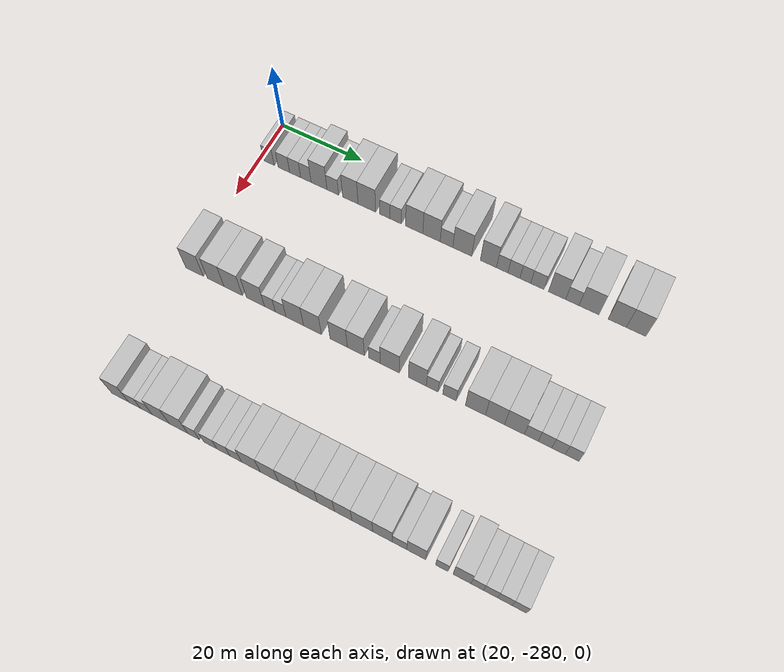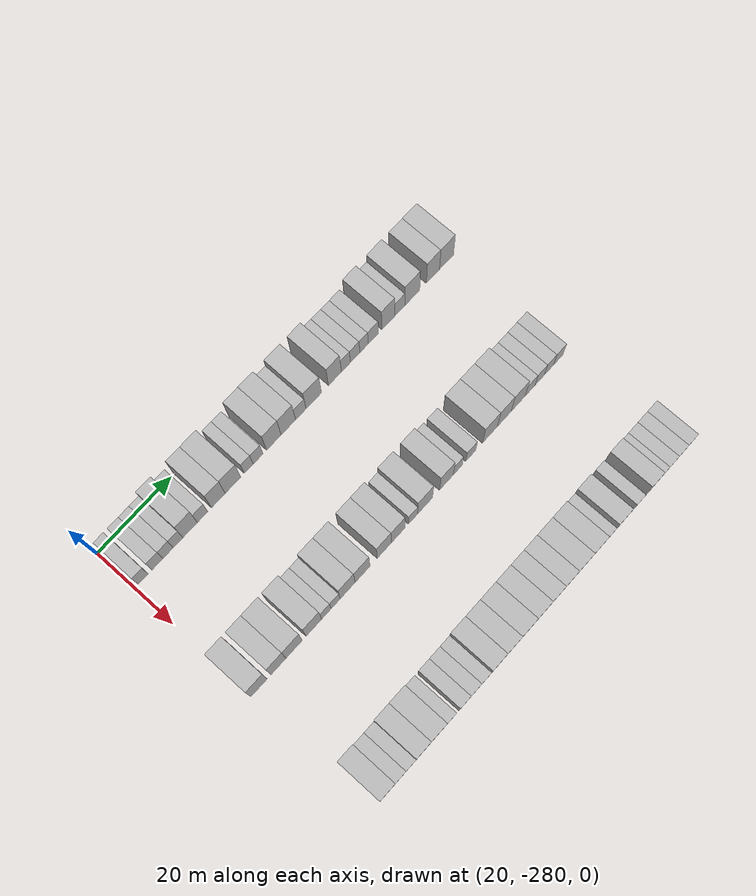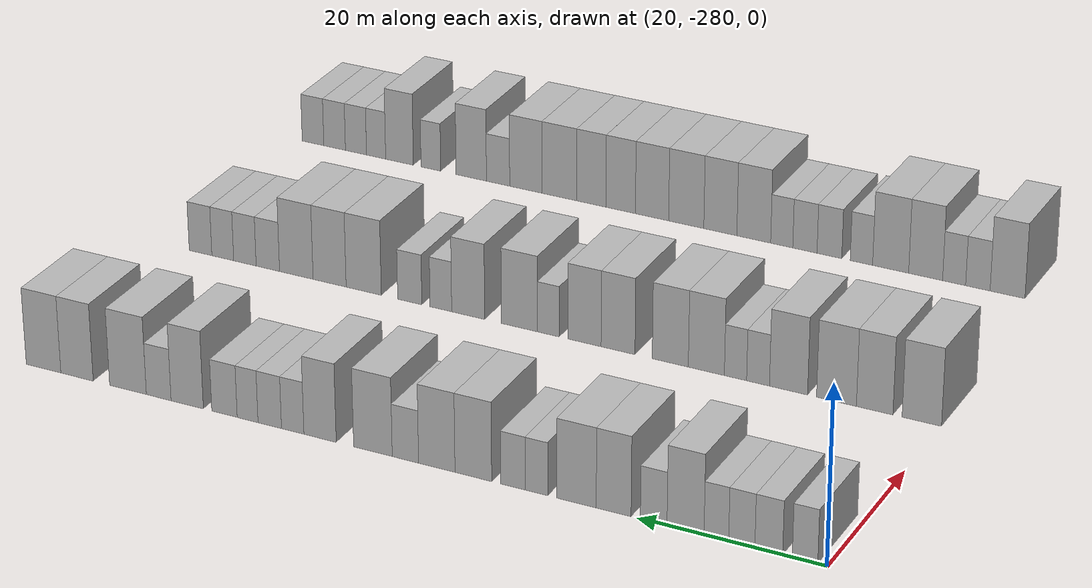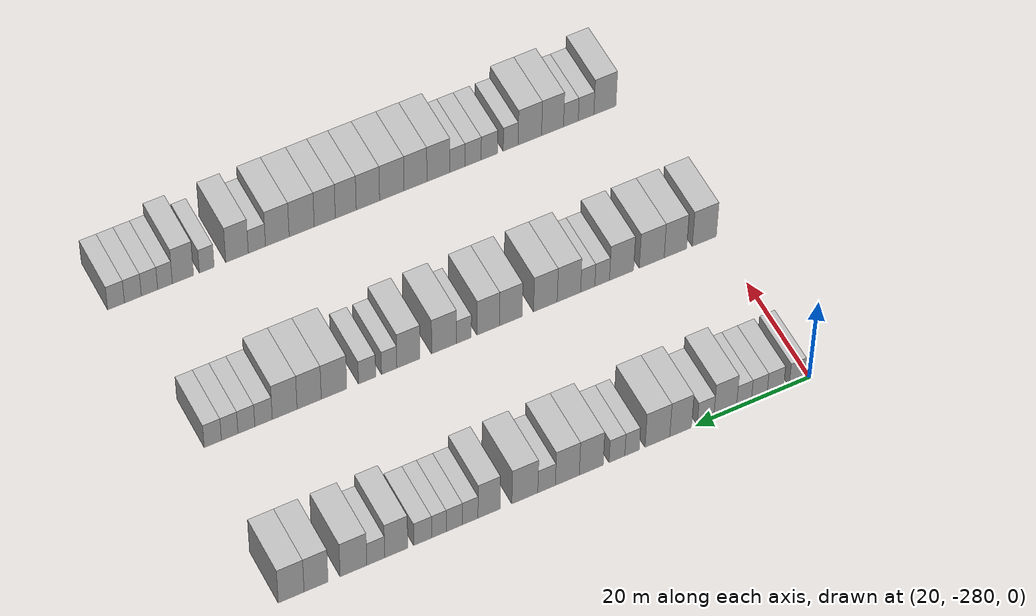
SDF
<sdf version="1.6">
 <world name="default">
  <model name="building_1">
   <static>1</static>
   <pose>25.0000 -277.6781 0 0.000000 0.000000 0.000000</pose>
   <link name="link">
    <pose>0 0 3.00 0 0 0</pose>
    <collision name="collision"><geometry><box><size>10.0000 2.6438 6.0000</size></box></geometry></collision>
    <visual name="visual">
     <cast_shadows>0</cast_shadows>
     <geometry><box><size>10.0000 2.6438 6.0000</size></box></geometry>
     <material>
      <script>
       <uri>model://HANNAS_wall/materials/scripts</uri>
       <uri>model://HANNAS_wall/materials/textures</uri>
       <name>vrc/HANNAS_wall</name>
      </script>
     </material>
    </visual>
   </link>
  </model>
  <model name="building_2">
   <static>1</static>
   <pose>25.0000 -273.9054 0 0.000000 0.000000 0.000000</pose>
   <link name="link">
    <pose>0 0 3.00 0 0 0</pose>
    <collision name="collision"><geometry><box><size>10.0000 2.9015 6.0000</size></box></geometry></collision>
    <visual name="visual">
     <cast_shadows>0</cast_shadows>
     <geometry><box><size>10.0000 2.9015 6.0000</size></box></geometry>
     <material>
      <script>
       <uri>model://HANNAS_wall/materials/scripts</uri>
       <uri>model://HANNAS_wall/materials/textures</uri>
       <name>vrc/HANNAS_wall</name>
      </script>
     </material>
    </visual>
   </link>
  </model>
  <model name="building_3">
   <static>1</static>
   <pose>25.0000 -271.0770 0 0.000000 0.000000 0.000000</pose>
   <link name="link">
    <pose>0 0 3.00 0 0 0</pose>
    <collision name="collision"><geometry><box><size>10.0000 2.7553 6.0000</size></box></geometry></collision>
    <visual name="visual">
     <cast_shadows>0</cast_shadows>
     <geometry><box><size>10.0000 2.7553 6.0000</size></box></geometry>
     <material>
      <script>
       <uri>model://HANNAS_wall/materials/scripts</uri>
       <uri>model://HANNAS_wall/materials/textures</uri>
       <name>vrc/HANNAS_wall</name>
      </script>
     </material>
    </visual>
   </link>
  </model>
  <model name="building_4">
   <static>1</static>
   <pose>25.0000 -268.3990 0 0.000000 0.000000 0.000000</pose>
   <link name="link">
    <pose>0 0 3.00 0 0 0</pose>
    <collision name="collision"><geometry><box><size>10.0000 2.6006 6.0000</size></box></geometry></collision>
    <visual name="visual">
     <cast_shadows>0</cast_shadows>
     <geometry><box><size>10.0000 2.6006 6.0000</size></box></geometry>
     <material>
      <script>
       <uri>model://HANNAS_wall/materials/scripts</uri>
       <uri>model://HANNAS_wall/materials/textures</uri>
       <name>vrc/HANNAS_wall</name>
      </script>
     </material>
    </visual>
   </link>
  </model>
  <model name="building_5">
   <static>1</static>
   <pose>25.0000 -265.1300 0 0.000000 0.000000 0.000000</pose>
   <link name="link">
    <pose>0 0 4.50 0 0 0</pose>
    <collision name="collision"><geometry><box><size>10.0000 3.9375 9.0000</size></box></geometry></collision>
    <visual name="visual">
     <cast_shadows>0</cast_shadows>
     <geometry><box><size>10.0000 3.9375 9.0000</size></box></geometry>
     <material>
      <script>
       <uri>model://HANNAS_wall/materials/scripts</uri>
       <uri>model://HANNAS_wall/materials/textures</uri>
       <name>vrc/HANNAS_wall</name>
      </script>
     </material>
    </visual>
   </link>
  </model>
  <model name="building_6">
   <static>1</static>
   <pose>25.0000 -261.7340 0 0.000000 0.000000 0.000000</pose>
   <link name="link">
    <pose>0 0 3.00 0 0 0</pose>
    <collision name="collision"><geometry><box><size>10.0000 2.8546 6.0000</size></box></geometry></collision>
    <visual name="visual">
     <cast_shadows>0</cast_shadows>
     <geometry><box><size>10.0000 2.8546 6.0000</size></box></geometry>
     <material>
      <script>
       <uri>model://HANNAS_wall/materials/scripts</uri>
       <uri>model://HANNAS_wall/materials/textures</uri>
       <name>vrc/HANNAS_wall</name>
      </script>
     </material>
    </visual>
   </link>
  </model>
  <model name="building_7">
   <static>1</static>
   <pose>25.0000 -257.4243 0 0.000000 0.000000 0.000000</pose>
   <link name="link">
    <pose>0 0 4.50 0 0 0</pose>
    <collision name="collision"><geometry><box><size>10.0000 3.7646 9.0000</size></box></geometry></collision>
    <visual name="visual">
     <cast_shadows>0</cast_shadows>
     <geometry><box><size>10.0000 3.7646 9.0000</size></box></geometry>
     <material>
      <script>
       <uri>model://HANNAS_wall/materials/scripts</uri>
       <uri>model://HANNAS_wall/materials/textures</uri>
       <name>vrc/HANNAS_wall</name>
      </script>
     </material>
    </visual>
   </link>
  </model>
  <model name="building_8">
   <static>1</static>
   <pose>25.0000 -253.4017 0 0.000000 0.000000 0.000000</pose>
   <link name="link">
    <pose>0 0 4.50 0 0 0</pose>
    <collision name="collision"><geometry><box><size>10.0000 4.2806 9.0000</size></box></geometry></collision>
    <visual name="visual">
     <cast_shadows>0</cast_shadows>
     <geometry><box><size>10.0000 4.2806 9.0000</size></box></geometry>
     <material>
      <script>
       <uri>model://HANNAS_wall/materials/scripts</uri>
       <uri>model://HANNAS_wall/materials/textures</uri>
       <name>vrc/HANNAS_wall</name>
      </script>
     </material>
    </visual>
   </link>
  </model>
  <model name="building_9">
   <static>1</static>
   <pose>25.0000 -249.0257 0 0.000000 0.000000 0.000000</pose>
   <link name="link">
    <pose>0 0 3.00 0 0 0</pose>
    <collision name="collision"><geometry><box><size>10.0000 2.4715 6.0000</size></box></geometry></collision>
    <visual name="visual">
     <cast_shadows>0</cast_shadows>
     <geometry><box><size>10.0000 2.4715 6.0000</size></box></geometry>
     <material>
      <script>
       <uri>model://HANNAS_wall/materials/scripts</uri>
       <uri>model://HANNAS_wall/materials/textures</uri>
       <name>vrc/HANNAS_wall</name>
      </script>
     </material>
    </visual>
   </link>
  </model>
  <model name="building_10">
   <static>1</static>
   <pose>25.0000 -246.4286 0 0.000000 0.000000 0.000000</pose>
   <link name="link">
    <pose>0 0 3.00 0 0 0</pose>
    <collision name="collision"><geometry><box><size>10.0000 2.7227 6.0000</size></box></geometry></collision>
    <visual name="visual">
     <cast_shadows>0</cast_shadows>
     <geometry><box><size>10.0000 2.7227 6.0000</size></box></geometry>
     <material>
      <script>
       <uri>model://HANNAS_wall/materials/scripts</uri>
       <uri>model://HANNAS_wall/materials/textures</uri>
       <name>vrc/HANNAS_wall</name>
      </script>
     </material>
    </visual>
   </link>
  </model>
  <model name="building_11">
   <static>1</static>
   <pose>25.0000 -242.0213 0 0.000000 0.000000 0.000000</pose>
   <link name="link">
    <pose>0 0 4.50 0 0 0</pose>
    <collision name="collision"><geometry><box><size>10.0000 4.0918 9.0000</size></box></geometry></collision>
    <visual name="visual">
     <cast_shadows>0</cast_shadows>
     <geometry><box><size>10.0000 4.0918 9.0000</size></box></geometry>
     <material>
      <script>
       <uri>model://HANNAS_wall/materials/scripts</uri>
       <uri>model://HANNAS_wall/materials/textures</uri>
       <name>vrc/HANNAS_wall</name>
      </script>
     </material>
    </visual>
   </link>
  </model>
  <model name="building_12">
   <static>1</static>
   <pose>25.0000 -237.9267 0 0.000000 0.000000 0.000000</pose>
   <link name="link">
    <pose>0 0 4.50 0 0 0</pose>
    <collision name="collision"><geometry><box><size>10.0000 4.0975 9.0000</size></box></geometry></collision>
    <visual name="visual">
     <cast_shadows>0</cast_shadows>
     <geometry><box><size>10.0000 4.0975 9.0000</size></box></geometry>
     <material>
      <script>
       <uri>model://HANNAS_wall/materials/scripts</uri>
       <uri>model://HANNAS_wall/materials/textures</uri>
       <name>vrc/HANNAS_wall</name>
      </script>
     </material>
    </visual>
   </link>
  </model>
  <model name="building_13">
   <static>1</static>
   <pose>25.0000 -234.3862 0 0.000000 0.000000 0.000000</pose>
   <link name="link">
    <pose>0 0 3.00 0 0 0</pose>
    <collision name="collision"><geometry><box><size>10.0000 2.9835 6.0000</size></box></geometry></collision>
    <visual name="visual">
     <cast_shadows>0</cast_shadows>
     <geometry><box><size>10.0000 2.9835 6.0000</size></box></geometry>
     <material>
      <script>
       <uri>model://HANNAS_wall/materials/scripts</uri>
       <uri>model://HANNAS_wall/materials/textures</uri>
       <name>vrc/HANNAS_wall</name>
      </script>
     </material>
    </visual>
   </link>
  </model>
  <model name="building_14">
   <static>1</static>
   <pose>25.0000 -230.6913 0 0.000000 0.000000 0.000000</pose>
   <link name="link">
    <pose>0 0 4.50 0 0 0</pose>
    <collision name="collision"><geometry><box><size>10.0000 4.4063 9.0000</size></box></geometry></collision>
    <visual name="visual">
     <cast_shadows>0</cast_shadows>
     <geometry><box><size>10.0000 4.4063 9.0000</size></box></geometry>
     <material>
      <script>
       <uri>model://HANNAS_wall/materials/scripts</uri>
       <uri>model://HANNAS_wall/materials/textures</uri>
       <name>vrc/HANNAS_wall</name>
      </script>
     </material>
    </visual>
   </link>
  </model>
  <model name="building_15">
   <static>1</static>
   <pose>25.0000 -224.6204 0 0.000000 0.000000 0.000000</pose>
   <link name="link">
    <pose>0 0 4.50 0 0 0</pose>
    <collision name="collision"><geometry><box><size>10.0000 3.7354 9.0000</size></box></geometry></collision>
    <visual name="visual">
     <cast_shadows>0</cast_shadows>
     <geometry><box><size>10.0000 3.7354 9.0000</size></box></geometry>
     <material>
      <script>
       <uri>model://HANNAS_wall/materials/scripts</uri>
       <uri>model://HANNAS_wall/materials/textures</uri>
       <name>vrc/HANNAS_wall</name>
      </script>
     </material>
    </visual>
   </link>
  </model>
  <model name="building_16">
   <static>1</static>
   <pose>25.0000 -221.4481 0 0.000000 0.000000 0.000000</pose>
   <link name="link">
    <pose>0 0 3.00 0 0 0</pose>
    <collision name="collision"><geometry><box><size>10.0000 2.6093 6.0000</size></box></geometry></collision>
    <visual name="visual">
     <cast_shadows>0</cast_shadows>
     <geometry><box><size>10.0000 2.6093 6.0000</size></box></geometry>
     <material>
      <script>
       <uri>model://HANNAS_wall/materials/scripts</uri>
       <uri>model://HANNAS_wall/materials/textures</uri>
       <name>vrc/HANNAS_wall</name>
      </script>
     </material>
    </visual>
   </link>
  </model>
  <model name="building_17">
   <static>1</static>
   <pose>25.0000 -218.7706 0 0.000000 0.000000 0.000000</pose>
   <link name="link">
    <pose>0 0 3.00 0 0 0</pose>
    <collision name="collision"><geometry><box><size>10.0000 2.7456 6.0000</size></box></geometry></collision>
    <visual name="visual">
     <cast_shadows>0</cast_shadows>
     <geometry><box><size>10.0000 2.7456 6.0000</size></box></geometry>
     <material>
      <script>
       <uri>model://HANNAS_wall/materials/scripts</uri>
       <uri>model://HANNAS_wall/materials/textures</uri>
       <name>vrc/HANNAS_wall</name>
      </script>
     </material>
    </visual>
   </link>
  </model>
  <model name="building_18">
   <static>1</static>
   <pose>25.0000 -216.1740 0 0.000000 0.000000 0.000000</pose>
   <link name="link">
    <pose>0 0 3.00 0 0 0</pose>
    <collision name="collision"><geometry><box><size>10.0000 2.4477 6.0000</size></box></geometry></collision>
    <visual name="visual">
     <cast_shadows>0</cast_shadows>
     <geometry><box><size>10.0000 2.4477 6.0000</size></box></geometry>
     <material>
      <script>
       <uri>model://HANNAS_wall/materials/scripts</uri>
       <uri>model://HANNAS_wall/materials/textures</uri>
       <name>vrc/HANNAS_wall</name>
      </script>
     </material>
    </visual>
   </link>
  </model>
  <model name="building_19">
   <static>1</static>
   <pose>25.0000 -213.4519 0 0.000000 0.000000 0.000000</pose>
   <link name="link">
    <pose>0 0 3.00 0 0 0</pose>
    <collision name="collision"><geometry><box><size>10.0000 2.9965 6.0000</size></box></geometry></collision>
    <visual name="visual">
     <cast_shadows>0</cast_shadows>
     <geometry><box><size>10.0000 2.9965 6.0000</size></box></geometry>
     <material>
      <script>
       <uri>model://HANNAS_wall/materials/scripts</uri>
       <uri>model://HANNAS_wall/materials/textures</uri>
       <name>vrc/HANNAS_wall</name>
      </script>
     </material>
    </visual>
   </link>
  </model>
  <model name="building_20">
   <static>1</static>
   <pose>25.0000 -209.0284 0 0.000000 0.000000 0.000000</pose>
   <link name="link">
    <pose>0 0 4.50 0 0 0</pose>
    <collision name="collision"><geometry><box><size>10.0000 3.8504 9.0000</size></box></geometry></collision>
    <visual name="visual">
     <cast_shadows>0</cast_shadows>
     <geometry><box><size>10.0000 3.8504 9.0000</size></box></geometry>
     <material>
      <script>
       <uri>model://HANNAS_wall/materials/scripts</uri>
       <uri>model://HANNAS_wall/materials/textures</uri>
       <name>vrc/HANNAS_wall</name>
      </script>
     </material>
    </visual>
   </link>
  </model>
  <model name="building_21">
   <static>1</static>
   <pose>25.0000 -205.6199 0 0.000000 0.000000 0.000000</pose>
   <link name="link">
    <pose>0 0 3.00 0 0 0</pose>
    <collision name="collision"><geometry><box><size>10.0000 2.9667 6.0000</size></box></geometry></collision>
    <visual name="visual">
     <cast_shadows>0</cast_shadows>
     <geometry><box><size>10.0000 2.9667 6.0000</size></box></geometry>
     <material>
      <script>
       <uri>model://HANNAS_wall/materials/scripts</uri>
       <uri>model://HANNAS_wall/materials/textures</uri>
       <name>vrc/HANNAS_wall</name>
      </script>
     </material>
    </visual>
   </link>
  </model>
  <model name="building_22">
   <static>1</static>
   <pose>25.0000 -201.9201 0 0.000000 0.000000 0.000000</pose>
   <link name="link">
    <pose>0 0 4.50 0 0 0</pose>
    <collision name="collision"><geometry><box><size>10.0000 4.4330 9.0000</size></box></geometry></collision>
    <visual name="visual">
     <cast_shadows>0</cast_shadows>
     <geometry><box><size>10.0000 4.4330 9.0000</size></box></geometry>
     <material>
      <script>
       <uri>model://HANNAS_wall/materials/scripts</uri>
       <uri>model://HANNAS_wall/materials/textures</uri>
       <name>vrc/HANNAS_wall</name>
      </script>
     </material>
    </visual>
   </link>
  </model>
  <model name="building_23">
   <static>1</static>
   <pose>25.0000 -195.7237 0 0.000000 0.000000 0.000000</pose>
   <link name="link">
    <pose>0 0 4.50 0 0 0</pose>
    <collision name="collision"><geometry><box><size>10.0000 3.9597 9.0000</size></box></geometry></collision>
    <visual name="visual">
     <cast_shadows>0</cast_shadows>
     <geometry><box><size>10.0000 3.9597 9.0000</size></box></geometry>
     <material>
      <script>
       <uri>model://HANNAS_wall/materials/scripts</uri>
       <uri>model://HANNAS_wall/materials/textures</uri>
       <name>vrc/HANNAS_wall</name>
      </script>
     </material>
    </visual>
   </link>
  </model>
  <model name="building_24">
   <static>1</static>
   <pose>25.0000 -191.6149 0 0.000000 0.000000 0.000000</pose>
   <link name="link">
    <pose>0 0 4.50 0 0 0</pose>
    <collision name="collision"><geometry><box><size>10.0000 4.2580 9.0000</size></box></geometry></collision>
    <visual name="visual">
     <cast_shadows>0</cast_shadows>
     <geometry><box><size>10.0000 4.2580 9.0000</size></box></geometry>
     <material>
      <script>
       <uri>model://HANNAS_wall/materials/scripts</uri>
       <uri>model://HANNAS_wall/materials/textures</uri>
       <name>vrc/HANNAS_wall</name>
      </script>
     </material>
    </visual>
   </link>
  </model>
  <model name="building_145">
   <static>1</static>
   <pose>55.0000 -277.8526 0 0.000000 0.000000 0.000000</pose>
   <link name="link">
    <pose>0 0 4.50 0 0 0</pose>
    <collision name="collision"><geometry><box><size>10.0000 4.2949 9.0000</size></box></geometry></collision>
    <visual name="visual">
     <cast_shadows>0</cast_shadows>
     <geometry><box><size>10.0000 4.2949 9.0000</size></box></geometry>
     <material>
      <script>
       <uri>model://HANNAS_wall/materials/scripts</uri>
       <uri>model://HANNAS_wall/materials/textures</uri>
       <name>vrc/HANNAS_wall</name>
      </script>
     </material>
    </visual>
   </link>
  </model>
  <model name="building_146">
   <static>1</static>
   <pose>55.0000 -272.6951 0 0.000000 0.000000 0.000000</pose>
   <link name="link">
    <pose>0 0 4.50 0 0 0</pose>
    <collision name="collision"><geometry><box><size>10.0000 4.0200 9.0000</size></box></geometry></collision>
    <visual name="visual">
     <cast_shadows>0</cast_shadows>
     <geometry><box><size>10.0000 4.0200 9.0000</size></box></geometry>
     <material>
      <script>
       <uri>model://HANNAS_wall/materials/scripts</uri>
       <uri>model://HANNAS_wall/materials/textures</uri>
       <name>vrc/HANNAS_wall</name>
      </script>
     </material>
    </visual>
   </link>
  </model>
  <model name="building_147">
   <static>1</static>
   <pose>55.0000 -268.4760 0 0.000000 0.000000 0.000000</pose>
   <link name="link">
    <pose>0 0 4.50 0 0 0</pose>
    <collision name="collision"><geometry><box><size>10.0000 4.4182 9.0000</size></box></geometry></collision>
    <visual name="visual">
     <cast_shadows>0</cast_shadows>
     <geometry><box><size>10.0000 4.4182 9.0000</size></box></geometry>
     <material>
      <script>
       <uri>model://HANNAS_wall/materials/scripts</uri>
       <uri>model://HANNAS_wall/materials/textures</uri>
       <name>vrc/HANNAS_wall</name>
      </script>
     </material>
    </visual>
   </link>
  </model>
  <model name="building_148">
   <static>1</static>
   <pose>55.0000 -263.1306 0 0.000000 0.000000 0.000000</pose>
   <link name="link">
    <pose>0 0 4.50 0 0 0</pose>
    <collision name="collision"><geometry><box><size>10.0000 4.2727 9.0000</size></box></geometry></collision>
    <visual name="visual">
     <cast_shadows>0</cast_shadows>
     <geometry><box><size>10.0000 4.2727 9.0000</size></box></geometry>
     <material>
      <script>
       <uri>model://HANNAS_wall/materials/scripts</uri>
       <uri>model://HANNAS_wall/materials/textures</uri>
       <name>vrc/HANNAS_wall</name>
      </script>
     </material>
    </visual>
   </link>
  </model>
  <model name="building_149">
   <static>1</static>
   <pose>55.0000 -259.7042 0 0.000000 0.000000 0.000000</pose>
   <link name="link">
    <pose>0 0 3.00 0 0 0</pose>
    <collision name="collision"><geometry><box><size>10.0000 2.5799 6.0000</size></box></geometry></collision>
    <visual name="visual">
     <cast_shadows>0</cast_shadows>
     <geometry><box><size>10.0000 2.5799 6.0000</size></box></geometry>
     <material>
      <script>
       <uri>model://HANNAS_wall/materials/scripts</uri>
       <uri>model://HANNAS_wall/materials/textures</uri>
       <name>vrc/HANNAS_wall</name>
      </script>
     </material>
    </visual>
   </link>
  </model>
  <model name="building_150">
   <static>1</static>
   <pose>55.0000 -257.1541 0 0.000000 0.000000 0.000000</pose>
   <link name="link">
    <pose>0 0 3.00 0 0 0</pose>
    <collision name="collision"><geometry><box><size>10.0000 2.5204 6.0000</size></box></geometry></collision>
    <visual name="visual">
     <cast_shadows>0</cast_shadows>
     <geometry><box><size>10.0000 2.5204 6.0000</size></box></geometry>
     <material>
      <script>
       <uri>model://HANNAS_wall/materials/scripts</uri>
       <uri>model://HANNAS_wall/materials/textures</uri>
       <name>vrc/HANNAS_wall</name>
      </script>
     </material>
    </visual>
   </link>
  </model>
  <model name="building_151">
   <static>1</static>
   <pose>55.0000 -253.8366 0 0.000000 0.000000 0.000000</pose>
   <link name="link">
    <pose>0 0 4.50 0 0 0</pose>
    <collision name="collision"><geometry><box><size>10.0000 4.1146 9.0000</size></box></geometry></collision>
    <visual name="visual">
     <cast_shadows>0</cast_shadows>
     <geometry><box><size>10.0000 4.1146 9.0000</size></box></geometry>
     <material>
      <script>
       <uri>model://HANNAS_wall/materials/scripts</uri>
       <uri>model://HANNAS_wall/materials/textures</uri>
       <name>vrc/HANNAS_wall</name>
      </script>
     </material>
    </visual>
   </link>
  </model>
  <model name="building_152">
   <static>1</static>
   <pose>55.0000 -249.7070 0 0.000000 0.000000 0.000000</pose>
   <link name="link">
    <pose>0 0 4.50 0 0 0</pose>
    <collision name="collision"><geometry><box><size>10.0000 4.1446 9.0000</size></box></geometry></collision>
    <visual name="visual">
     <cast_shadows>0</cast_shadows>
     <geometry><box><size>10.0000 4.1446 9.0000</size></box></geometry>
     <material>
      <script>
       <uri>model://HANNAS_wall/materials/scripts</uri>
       <uri>model://HANNAS_wall/materials/textures</uri>
       <name>vrc/HANNAS_wall</name>
      </script>
     </material>
    </visual>
   </link>
  </model>
  <model name="building_153">
   <static>1</static>
   <pose>55.0000 -243.6603 0 0.000000 0.000000 0.000000</pose>
   <link name="link">
    <pose>0 0 4.50 0 0 0</pose>
    <collision name="collision"><geometry><box><size>10.0000 3.9489 9.0000</size></box></geometry></collision>
    <visual name="visual">
     <cast_shadows>0</cast_shadows>
     <geometry><box><size>10.0000 3.9489 9.0000</size></box></geometry>
     <material>
      <script>
       <uri>model://HANNAS_wall/materials/scripts</uri>
       <uri>model://HANNAS_wall/materials/textures</uri>
       <name>vrc/HANNAS_wall</name>
      </script>
     </material>
    </visual>
   </link>
  </model>
  <model name="building_154">
   <static>1</static>
   <pose>55.0000 -239.7369 0 0.000000 0.000000 0.000000</pose>
   <link name="link">
    <pose>0 0 4.50 0 0 0</pose>
    <collision name="collision"><geometry><box><size>10.0000 3.8979 9.0000</size></box></geometry></collision>
    <visual name="visual">
     <cast_shadows>0</cast_shadows>
     <geometry><box><size>10.0000 3.8979 9.0000</size></box></geometry>
     <material>
      <script>
       <uri>model://HANNAS_wall/materials/scripts</uri>
       <uri>model://HANNAS_wall/materials/textures</uri>
       <name>vrc/HANNAS_wall</name>
      </script>
     </material>
    </visual>
   </link>
  </model>
  <model name="building_155">
   <static>1</static>
   <pose>55.0000 -235.4983 0 0.000000 0.000000 0.000000</pose>
   <link name="link">
    <pose>0 0 3.00 0 0 0</pose>
    <collision name="collision"><geometry><box><size>10.0000 2.5792 6.0000</size></box></geometry></collision>
    <visual name="visual">
     <cast_shadows>0</cast_shadows>
     <geometry><box><size>10.0000 2.5792 6.0000</size></box></geometry>
     <material>
      <script>
       <uri>model://HANNAS_wall/materials/scripts</uri>
       <uri>model://HANNAS_wall/materials/textures</uri>
       <name>vrc/HANNAS_wall</name>
      </script>
     </material>
    </visual>
   </link>
  </model>
  <model name="building_156">
   <static>1</static>
   <pose>55.0000 -232.0605 0 0.000000 0.000000 0.000000</pose>
   <link name="link">
    <pose>0 0 4.50 0 0 0</pose>
    <collision name="collision"><geometry><box><size>10.0000 4.2965 9.0000</size></box></geometry></collision>
    <visual name="visual">
     <cast_shadows>0</cast_shadows>
     <geometry><box><size>10.0000 4.2965 9.0000</size></box></geometry>
     <material>
      <script>
       <uri>model://HANNAS_wall/materials/scripts</uri>
       <uri>model://HANNAS_wall/materials/textures</uri>
       <name>vrc/HANNAS_wall</name>
      </script>
     </material>
    </visual>
   </link>
  </model>
  <model name="building_157">
   <static>1</static>
   <pose>55.0000 -225.9245 0 0.000000 0.000000 0.000000</pose>
   <link name="link">
    <pose>0 0 4.50 0 0 0</pose>
    <collision name="collision"><geometry><box><size>10.0000 3.9755 9.0000</size></box></geometry></collision>
    <visual name="visual">
     <cast_shadows>0</cast_shadows>
     <geometry><box><size>10.0000 3.9755 9.0000</size></box></geometry>
     <material>
      <script>
       <uri>model://HANNAS_wall/materials/scripts</uri>
       <uri>model://HANNAS_wall/materials/textures</uri>
       <name>vrc/HANNAS_wall</name>
      </script>
     </material>
    </visual>
   </link>
  </model>
  <model name="building_158">
   <static>1</static>
   <pose>55.0000 -222.6267 0 0.000000 0.000000 0.000000</pose>
   <link name="link">
    <pose>0 0 3.00 0 0 0</pose>
    <collision name="collision"><geometry><box><size>10.0000 2.6201 6.0000</size></box></geometry></collision>
    <visual name="visual">
     <cast_shadows>0</cast_shadows>
     <geometry><box><size>10.0000 2.6201 6.0000</size></box></geometry>
     <material>
      <script>
       <uri>model://HANNAS_wall/materials/scripts</uri>
       <uri>model://HANNAS_wall/materials/textures</uri>
       <name>vrc/HANNAS_wall</name>
      </script>
     </material>
    </visual>
   </link>
  </model>
  <model name="building_159">
   <static>1</static>
   <pose>55.0000 -218.8432 0 0.000000 0.000000 0.000000</pose>
   <link name="link">
    <pose>0 0 3.00 0 0 0</pose>
    <collision name="collision"><geometry><box><size>10.0000 2.9471 6.0000</size></box></geometry></collision>
    <visual name="visual">
     <cast_shadows>0</cast_shadows>
     <geometry><box><size>10.0000 2.9471 6.0000</size></box></geometry>
     <material>
      <script>
       <uri>model://HANNAS_wall/materials/scripts</uri>
       <uri>model://HANNAS_wall/materials/textures</uri>
       <name>vrc/HANNAS_wall</name>
      </script>
     </material>
    </visual>
   </link>
  </model>
  <model name="building_160">
   <static>1</static>
   <pose>55.0000 -213.1974 0 0.000000 0.000000 0.000000</pose>
   <link name="link">
    <pose>0 0 4.50 0 0 0</pose>
    <collision name="collision"><geometry><box><size>10.0000 4.3444 9.0000</size></box></geometry></collision>
    <visual name="visual">
     <cast_shadows>0</cast_shadows>
     <geometry><box><size>10.0000 4.3444 9.0000</size></box></geometry>
     <material>
      <script>
       <uri>model://HANNAS_wall/materials/scripts</uri>
       <uri>model://HANNAS_wall/materials/textures</uri>
       <name>vrc/HANNAS_wall</name>
      </script>
     </material>
    </visual>
   </link>
  </model>
  <model name="building_161">
   <static>1</static>
   <pose>55.0000 -208.9726 0 0.000000 0.000000 0.000000</pose>
   <link name="link">
    <pose>0 0 4.50 0 0 0</pose>
    <collision name="collision"><geometry><box><size>10.0000 4.1052 9.0000</size></box></geometry></collision>
    <visual name="visual">
     <cast_shadows>0</cast_shadows>
     <geometry><box><size>10.0000 4.1052 9.0000</size></box></geometry>
     <material>
      <script>
       <uri>model://HANNAS_wall/materials/scripts</uri>
       <uri>model://HANNAS_wall/materials/textures</uri>
       <name>vrc/HANNAS_wall</name>
      </script>
     </material>
    </visual>
   </link>
  </model>
  <model name="building_162">
   <static>1</static>
   <pose>55.0000 -204.8187 0 0.000000 0.000000 0.000000</pose>
   <link name="link">
    <pose>0 0 4.50 0 0 0</pose>
    <collision name="collision"><geometry><box><size>10.0000 4.2028 9.0000</size></box></geometry></collision>
    <visual name="visual">
     <cast_shadows>0</cast_shadows>
     <geometry><box><size>10.0000 4.2028 9.0000</size></box></geometry>
     <material>
      <script>
       <uri>model://HANNAS_wall/materials/scripts</uri>
       <uri>model://HANNAS_wall/materials/textures</uri>
       <name>vrc/HANNAS_wall</name>
      </script>
     </material>
    </visual>
   </link>
  </model>
  <model name="building_163">
   <static>1</static>
   <pose>55.0000 -201.2425 0 0.000000 0.000000 0.000000</pose>
   <link name="link">
    <pose>0 0 3.00 0 0 0</pose>
    <collision name="collision"><geometry><box><size>10.0000 2.9495 6.0000</size></box></geometry></collision>
    <visual name="visual">
     <cast_shadows>0</cast_shadows>
     <geometry><box><size>10.0000 2.9495 6.0000</size></box></geometry>
     <material>
      <script>
       <uri>model://HANNAS_wall/materials/scripts</uri>
       <uri>model://HANNAS_wall/materials/textures</uri>
       <name>vrc/HANNAS_wall</name>
      </script>
     </material>
    </visual>
   </link>
  </model>
  <model name="building_164">
   <static>1</static>
   <pose>55.0000 -198.3446 0 0.000000 0.000000 0.000000</pose>
   <link name="link">
    <pose>0 0 3.00 0 0 0</pose>
    <collision name="collision"><geometry><box><size>10.0000 2.8462 6.0000</size></box></geometry></collision>
    <visual name="visual">
     <cast_shadows>0</cast_shadows>
     <geometry><box><size>10.0000 2.8462 6.0000</size></box></geometry>
     <material>
      <script>
       <uri>model://HANNAS_wall/materials/scripts</uri>
       <uri>model://HANNAS_wall/materials/textures</uri>
       <name>vrc/HANNAS_wall</name>
      </script>
     </material>
    </visual>
   </link>
  </model>
  <model name="building_165">
   <static>1</static>
   <pose>55.0000 -195.5296 0 0.000000 0.000000 0.000000</pose>
   <link name="link">
    <pose>0 0 3.00 0 0 0</pose>
    <collision name="collision"><geometry><box><size>10.0000 2.7838 6.0000</size></box></geometry></collision>
    <visual name="visual">
     <cast_shadows>0</cast_shadows>
     <geometry><box><size>10.0000 2.7838 6.0000</size></box></geometry>
     <material>
      <script>
       <uri>model://HANNAS_wall/materials/scripts</uri>
       <uri>model://HANNAS_wall/materials/textures</uri>
       <name>vrc/HANNAS_wall</name>
      </script>
     </material>
    </visual>
   </link>
  </model>
  <model name="building_166">
   <static>1</static>
   <pose>55.0000 -192.6920 0 0.000000 0.000000 0.000000</pose>
   <link name="link">
    <pose>0 0 3.00 0 0 0</pose>
    <collision name="collision"><geometry><box><size>10.0000 2.8914 6.0000</size></box></geometry></collision>
    <visual name="visual">
     <cast_shadows>0</cast_shadows>
     <geometry><box><size>10.0000 2.8914 6.0000</size></box></geometry>
     <material>
      <script>
       <uri>model://HANNAS_wall/materials/scripts</uri>
       <uri>model://HANNAS_wall/materials/textures</uri>
       <name>vrc/HANNAS_wall</name>
      </script>
     </material>
    </visual>
   </link>
  </model>
  <model name="building_283">
   <static>1</static>
   <pose>85.0000 -276.0027 0 0.000000 0.000000 0.000000</pose>
   <link name="link">
    <pose>0 0 4.50 0 0 0</pose>
    <collision name="collision"><geometry><box><size>10.0000 3.9946 9.0000</size></box></geometry></collision>
    <visual name="visual">
     <cast_shadows>0</cast_shadows>
     <geometry><box><size>10.0000 3.9946 9.0000</size></box></geometry>
     <material>
      <script>
       <uri>model://HANNAS_wall/materials/scripts</uri>
       <uri>model://HANNAS_wall/materials/textures</uri>
       <name>vrc/HANNAS_wall</name>
      </script>
     </material>
    </visual>
   </link>
  </model>
  <model name="building_284">
   <static>1</static>
   <pose>85.0000 -272.5943 0 0.000000 0.000000 0.000000</pose>
   <link name="link">
    <pose>0 0 3.00 0 0 0</pose>
    <collision name="collision"><geometry><box><size>10.0000 2.8222 6.0000</size></box></geometry></collision>
    <visual name="visual">
     <cast_shadows>0</cast_shadows>
     <geometry><box><size>10.0000 2.8222 6.0000</size></box></geometry>
     <material>
      <script>
       <uri>model://HANNAS_wall/materials/scripts</uri>
       <uri>model://HANNAS_wall/materials/textures</uri>
       <name>vrc/HANNAS_wall</name>
      </script>
     </material>
    </visual>
   </link>
  </model>
  <model name="building_285">
   <static>1</static>
   <pose>85.0000 -269.8478 0 0.000000 0.000000 0.000000</pose>
   <link name="link">
    <pose>0 0 3.00 0 0 0</pose>
    <collision name="collision"><geometry><box><size>10.0000 2.6710 6.0000</size></box></geometry></collision>
    <visual name="visual">
     <cast_shadows>0</cast_shadows>
     <geometry><box><size>10.0000 2.6710 6.0000</size></box></geometry>
     <material>
      <script>
       <uri>model://HANNAS_wall/materials/scripts</uri>
       <uri>model://HANNAS_wall/materials/textures</uri>
       <name>vrc/HANNAS_wall</name>
      </script>
     </material>
    </visual>
   </link>
  </model>
  <model name="building_286">
   <static>1</static>
   <pose>85.0000 -266.5318 0 0.000000 0.000000 0.000000</pose>
   <link name="link">
    <pose>0 0 4.50 0 0 0</pose>
    <collision name="collision"><geometry><box><size>10.0000 3.9609 9.0000</size></box></geometry></collision>
    <visual name="visual">
     <cast_shadows>0</cast_shadows>
     <geometry><box><size>10.0000 3.9609 9.0000</size></box></geometry>
     <material>
      <script>
       <uri>model://HANNAS_wall/materials/scripts</uri>
       <uri>model://HANNAS_wall/materials/textures</uri>
       <name>vrc/HANNAS_wall</name>
      </script>
     </material>
    </visual>
   </link>
  </model>
  <model name="building_287">
   <static>1</static>
   <pose>85.0000 -262.4348 0 0.000000 0.000000 0.000000</pose>
   <link name="link">
    <pose>0 0 4.50 0 0 0</pose>
    <collision name="collision"><geometry><box><size>10.0000 4.2330 9.0000</size></box></geometry></collision>
    <visual name="visual">
     <cast_shadows>0</cast_shadows>
     <geometry><box><size>10.0000 4.2330 9.0000</size></box></geometry>
     <material>
      <script>
       <uri>model://HANNAS_wall/materials/scripts</uri>
       <uri>model://HANNAS_wall/materials/textures</uri>
       <name>vrc/HANNAS_wall</name>
      </script>
     </material>
    </visual>
   </link>
  </model>
  <model name="building_288">
   <static>1</static>
   <pose>85.0000 -258.9924 0 0.000000 0.000000 0.000000</pose>
   <link name="link">
    <pose>0 0 3.00 0 0 0</pose>
    <collision name="collision"><geometry><box><size>10.0000 2.6518 6.0000</size></box></geometry></collision>
    <visual name="visual">
     <cast_shadows>0</cast_shadows>
     <geometry><box><size>10.0000 2.6518 6.0000</size></box></geometry>
     <material>
      <script>
       <uri>model://HANNAS_wall/materials/scripts</uri>
       <uri>model://HANNAS_wall/materials/textures</uri>
       <name>vrc/HANNAS_wall</name>
      </script>
     </material>
    </visual>
   </link>
  </model>
  <model name="building_289">
   <static>1</static>
   <pose>85.0000 -255.1921 0 0.000000 0.000000 0.000000</pose>
   <link name="link">
    <pose>0 0 3.00 0 0 0</pose>
    <collision name="collision"><geometry><box><size>10.0000 2.9487 6.0000</size></box></geometry></collision>
    <visual name="visual">
     <cast_shadows>0</cast_shadows>
     <geometry><box><size>10.0000 2.9487 6.0000</size></box></geometry>
     <material>
      <script>
       <uri>model://HANNAS_wall/materials/scripts</uri>
       <uri>model://HANNAS_wall/materials/textures</uri>
       <name>vrc/HANNAS_wall</name>
      </script>
     </material>
    </visual>
   </link>
  </model>
  <model name="building_290">
   <static>1</static>
   <pose>85.0000 -252.2659 0 0.000000 0.000000 0.000000</pose>
   <link name="link">
    <pose>0 0 3.00 0 0 0</pose>
    <collision name="collision"><geometry><box><size>10.0000 2.9037 6.0000</size></box></geometry></collision>
    <visual name="visual">
     <cast_shadows>0</cast_shadows>
     <geometry><box><size>10.0000 2.9037 6.0000</size></box></geometry>
     <material>
      <script>
       <uri>model://HANNAS_wall/materials/scripts</uri>
       <uri>model://HANNAS_wall/materials/textures</uri>
       <name>vrc/HANNAS_wall</name>
      </script>
     </material>
    </visual>
   </link>
  </model>
  <model name="building_291">
   <static>1</static>
   <pose>85.0000 -249.4831 0 0.000000 0.000000 0.000000</pose>
   <link name="link">
    <pose>0 0 3.00 0 0 0</pose>
    <collision name="collision"><geometry><box><size>10.0000 2.6618 6.0000</size></box></geometry></collision>
    <visual name="visual">
     <cast_shadows>0</cast_shadows>
     <geometry><box><size>10.0000 2.6618 6.0000</size></box></geometry>
     <material>
      <script>
       <uri>model://HANNAS_wall/materials/scripts</uri>
       <uri>model://HANNAS_wall/materials/textures</uri>
       <name>vrc/HANNAS_wall</name>
      </script>
     </material>
    </visual>
   </link>
  </model>
  <model name="building_292">
   <static>1</static>
   <pose>85.0000 -246.1044 0 0.000000 0.000000 0.000000</pose>
   <link name="link">
    <pose>0 0 4.50 0 0 0</pose>
    <collision name="collision"><geometry><box><size>10.0000 4.0957 9.0000</size></box></geometry></collision>
    <visual name="visual">
     <cast_shadows>0</cast_shadows>
     <geometry><box><size>10.0000 4.0957 9.0000</size></box></geometry>
     <material>
      <script>
       <uri>model://HANNAS_wall/materials/scripts</uri>
       <uri>model://HANNAS_wall/materials/textures</uri>
       <name>vrc/HANNAS_wall</name>
      </script>
     </material>
    </visual>
   </link>
  </model>
  <model name="building_293">
   <static>1</static>
   <pose>85.0000 -242.0418 0 0.000000 0.000000 0.000000</pose>
   <link name="link">
    <pose>0 0 4.50 0 0 0</pose>
    <collision name="collision"><geometry><box><size>10.0000 4.0294 9.0000</size></box></geometry></collision>
    <visual name="visual">
     <cast_shadows>0</cast_shadows>
     <geometry><box><size>10.0000 4.0294 9.0000</size></box></geometry>
     <material>
      <script>
       <uri>model://HANNAS_wall/materials/scripts</uri>
       <uri>model://HANNAS_wall/materials/textures</uri>
       <name>vrc/HANNAS_wall</name>
      </script>
     </material>
    </visual>
   </link>
  </model>
  <model name="building_294">
   <static>1</static>
   <pose>85.0000 -237.8638 0 0.000000 0.000000 0.000000</pose>
   <link name="link">
    <pose>0 0 4.50 0 0 0</pose>
    <collision name="collision"><geometry><box><size>10.0000 4.3266 9.0000</size></box></geometry></collision>
    <visual name="visual">
     <cast_shadows>0</cast_shadows>
     <geometry><box><size>10.0000 4.3266 9.0000</size></box></geometry>
     <material>
      <script>
       <uri>model://HANNAS_wall/materials/scripts</uri>
       <uri>model://HANNAS_wall/materials/textures</uri>
       <name>vrc/HANNAS_wall</name>
      </script>
     </material>
    </visual>
   </link>
  </model>
  <model name="building_295">
   <static>1</static>
   <pose>85.0000 -233.6435 0 0.000000 0.000000 0.000000</pose>
   <link name="link">
    <pose>0 0 4.50 0 0 0</pose>
    <collision name="collision"><geometry><box><size>10.0000 4.1141 9.0000</size></box></geometry></collision>
    <visual name="visual">
     <cast_shadows>0</cast_shadows>
     <geometry><box><size>10.0000 4.1141 9.0000</size></box></geometry>
     <material>
      <script>
       <uri>model://HANNAS_wall/materials/scripts</uri>
       <uri>model://HANNAS_wall/materials/textures</uri>
       <name>vrc/HANNAS_wall</name>
      </script>
     </material>
    </visual>
   </link>
  </model>
  <model name="building_296">
   <static>1</static>
   <pose>85.0000 -229.7510 0 0.000000 0.000000 0.000000</pose>
   <link name="link">
    <pose>0 0 4.50 0 0 0</pose>
    <collision name="collision"><geometry><box><size>10.0000 3.6709 9.0000</size></box></geometry></collision>
    <visual name="visual">
     <cast_shadows>0</cast_shadows>
     <geometry><box><size>10.0000 3.6709 9.0000</size></box></geometry>
     <material>
      <script>
       <uri>model://HANNAS_wall/materials/scripts</uri>
       <uri>model://HANNAS_wall/materials/textures</uri>
       <name>vrc/HANNAS_wall</name>
      </script>
     </material>
    </visual>
   </link>
  </model>
  <model name="building_297">
   <static>1</static>
   <pose>85.0000 -226.0698 0 0.000000 0.000000 0.000000</pose>
   <link name="link">
    <pose>0 0 4.50 0 0 0</pose>
    <collision name="collision"><geometry><box><size>10.0000 3.6913 9.0000</size></box></geometry></collision>
    <visual name="visual">
     <cast_shadows>0</cast_shadows>
     <geometry><box><size>10.0000 3.6913 9.0000</size></box></geometry>
     <material>
      <script>
       <uri>model://HANNAS_wall/materials/scripts</uri>
       <uri>model://HANNAS_wall/materials/textures</uri>
       <name>vrc/HANNAS_wall</name>
      </script>
     </material>
    </visual>
   </link>
  </model>
  <model name="building_298">
   <static>1</static>
   <pose>85.0000 -222.0364 0 0.000000 0.000000 0.000000</pose>
   <link name="link">
    <pose>0 0 4.50 0 0 0</pose>
    <collision name="collision"><geometry><box><size>10.0000 4.3754 9.0000</size></box></geometry></collision>
    <visual name="visual">
     <cast_shadows>0</cast_shadows>
     <geometry><box><size>10.0000 4.3754 9.0000</size></box></geometry>
     <material>
      <script>
       <uri>model://HANNAS_wall/materials/scripts</uri>
       <uri>model://HANNAS_wall/materials/textures</uri>
       <name>vrc/HANNAS_wall</name>
      </script>
     </material>
    </visual>
   </link>
  </model>
  <model name="building_299">
   <static>1</static>
   <pose>85.0000 -217.7935 0 0.000000 0.000000 0.000000</pose>
   <link name="link">
    <pose>0 0 4.50 0 0 0</pose>
    <collision name="collision"><geometry><box><size>10.0000 4.1104 9.0000</size></box></geometry></collision>
    <visual name="visual">
     <cast_shadows>0</cast_shadows>
     <geometry><box><size>10.0000 4.1104 9.0000</size></box></geometry>
     <material>
      <script>
       <uri>model://HANNAS_wall/materials/scripts</uri>
       <uri>model://HANNAS_wall/materials/textures</uri>
       <name>vrc/HANNAS_wall</name>
      </script>
     </material>
    </visual>
   </link>
  </model>
  <model name="building_300">
   <static>1</static>
   <pose>85.0000 -214.2470 0 0.000000 0.000000 0.000000</pose>
   <link name="link">
    <pose>0 0 3.00 0 0 0</pose>
    <collision name="collision"><geometry><box><size>10.0000 2.9827 6.0000</size></box></geometry></collision>
    <visual name="visual">
     <cast_shadows>0</cast_shadows>
     <geometry><box><size>10.0000 2.9827 6.0000</size></box></geometry>
     <material>
      <script>
       <uri>model://HANNAS_wall/materials/scripts</uri>
       <uri>model://HANNAS_wall/materials/textures</uri>
       <name>vrc/HANNAS_wall</name>
      </script>
     </material>
    </visual>
   </link>
  </model>
  <model name="building_301">
   <static>1</static>
   <pose>85.0000 -210.8007 0 0.000000 0.000000 0.000000</pose>
   <link name="link">
    <pose>0 0 4.50 0 0 0</pose>
    <collision name="collision"><geometry><box><size>10.0000 3.9098 9.0000</size></box></geometry></collision>
    <visual name="visual">
     <cast_shadows>0</cast_shadows>
     <geometry><box><size>10.0000 3.9098 9.0000</size></box></geometry>
     <material>
      <script>
       <uri>model://HANNAS_wall/materials/scripts</uri>
       <uri>model://HANNAS_wall/materials/textures</uri>
       <name>vrc/HANNAS_wall</name>
      </script>
     </material>
    </visual>
   </link>
  </model>
  <model name="building_302">
   <static>1</static>
   <pose>85.0000 -205.5670 0 0.000000 0.000000 0.000000</pose>
   <link name="link">
    <pose>0 0 3.00 0 0 0</pose>
    <collision name="collision"><geometry><box><size>10.0000 2.5575 6.0000</size></box></geometry></collision>
    <visual name="visual">
     <cast_shadows>0</cast_shadows>
     <geometry><box><size>10.0000 2.5575 6.0000</size></box></geometry>
     <material>
      <script>
       <uri>model://HANNAS_wall/materials/scripts</uri>
       <uri>model://HANNAS_wall/materials/textures</uri>
       <name>vrc/HANNAS_wall</name>
      </script>
     </material>
    </visual>
   </link>
  </model>
  <model name="building_303">
   <static>1</static>
   <pose>85.0000 -201.4707 0 0.000000 0.000000 0.000000</pose>
   <link name="link">
    <pose>0 0 4.50 0 0 0</pose>
    <collision name="collision"><geometry><box><size>10.0000 3.6350 9.0000</size></box></geometry></collision>
    <visual name="visual">
     <cast_shadows>0</cast_shadows>
     <geometry><box><size>10.0000 3.6350 9.0000</size></box></geometry>
     <material>
      <script>
       <uri>model://HANNAS_wall/materials/scripts</uri>
       <uri>model://HANNAS_wall/materials/textures</uri>
       <name>vrc/HANNAS_wall</name>
      </script>
     </material>
    </visual>
   </link>
  </model>
  <model name="building_304">
   <static>1</static>
   <pose>85.0000 -198.3917 0 0.000000 0.000000 0.000000</pose>
   <link name="link">
    <pose>0 0 3.00 0 0 0</pose>
    <collision name="collision"><geometry><box><size>10.0000 2.5231 6.0000</size></box></geometry></collision>
    <visual name="visual">
     <cast_shadows>0</cast_shadows>
     <geometry><box><size>10.0000 2.5231 6.0000</size></box></geometry>
     <material>
      <script>
       <uri>model://HANNAS_wall/materials/scripts</uri>
       <uri>model://HANNAS_wall/materials/textures</uri>
       <name>vrc/HANNAS_wall</name>
      </script>
     </material>
    </visual>
   </link>
  </model>
  <model name="building_305">
   <static>1</static>
   <pose>85.0000 -195.7334 0 0.000000 0.000000 0.000000</pose>
   <link name="link">
    <pose>0 0 3.00 0 0 0</pose>
    <collision name="collision"><geometry><box><size>10.0000 2.7934 6.0000</size></box></geometry></collision>
    <visual name="visual">
     <cast_shadows>0</cast_shadows>
     <geometry><box><size>10.0000 2.7934 6.0000</size></box></geometry>
     <material>
      <script>
       <uri>model://HANNAS_wall/materials/scripts</uri>
       <uri>model://HANNAS_wall/materials/textures</uri>
       <name>vrc/HANNAS_wall</name>
      </script>
     </material>
    </visual>
   </link>
  </model>
  <model name="building_306">
   <static>1</static>
   <pose>85.0000 -192.8973 0 0.000000 0.000000 0.000000</pose>
   <link name="link">
    <pose>0 0 3.00 0 0 0</pose>
    <collision name="collision"><geometry><box><size>10.0000 2.8788 6.0000</size></box></geometry></collision>
    <visual name="visual">
     <cast_shadows>0</cast_shadows>
     <geometry><box><size>10.0000 2.8788 6.0000</size></box></geometry>
     <material>
      <script>
       <uri>model://HANNAS_wall/materials/scripts</uri>
       <uri>model://HANNAS_wall/materials/textures</uri>
       <name>vrc/HANNAS_wall</name>
      </script>
     </material>
    </visual>
   </link>
  </model>
  <model name="building_307">
   <static>1</static>
   <pose>85.0000 -190.0132 0 0.000000 0.000000 0.000000</pose>
   <link name="link">
    <pose>0 0 3.00 0 0 0</pose>
    <collision name="collision"><geometry><box><size>10.0000 2.8893 6.0000</size></box></geometry></collision>
    <visual name="visual">
     <cast_shadows>0</cast_shadows>
     <geometry><box><size>10.0000 2.8893 6.0000</size></box></geometry>
     <material>
      <script>
       <uri>model://HANNAS_wall/materials/scripts</uri>
       <uri>model://HANNAS_wall/materials/textures</uri>
       <name>vrc/HANNAS_wall</name>
      </script>
     </material>
    </visual>
   </link>
  </model>
 </world>
</sdf>
